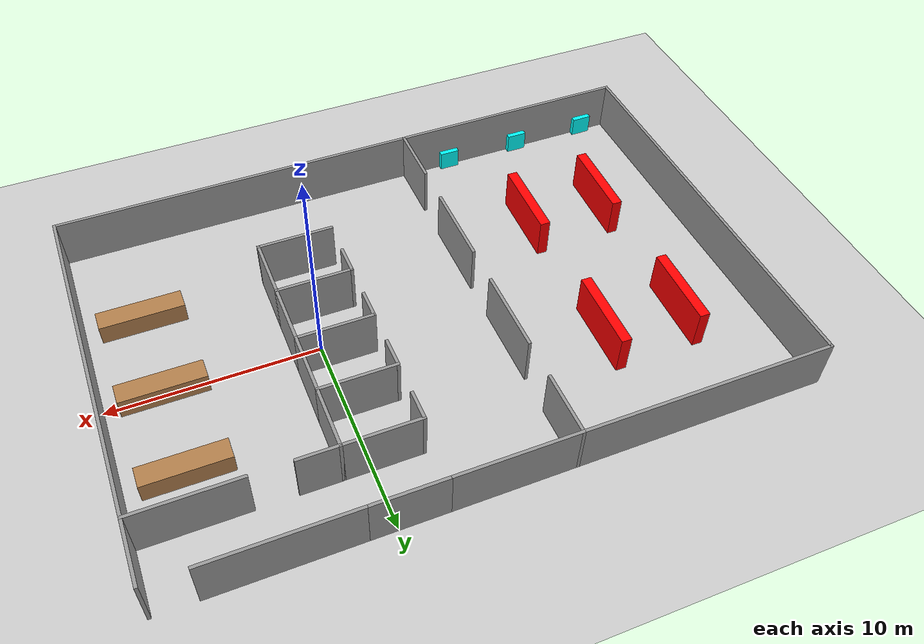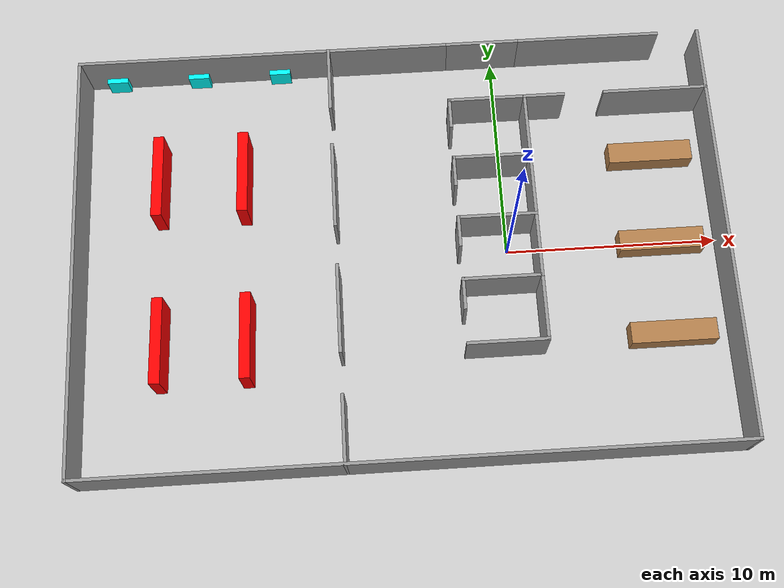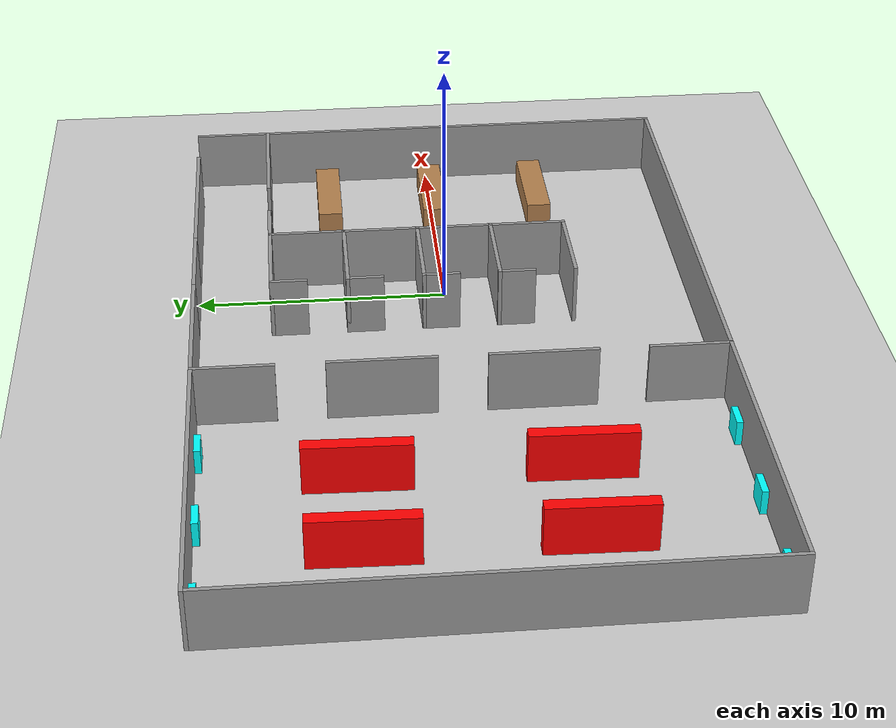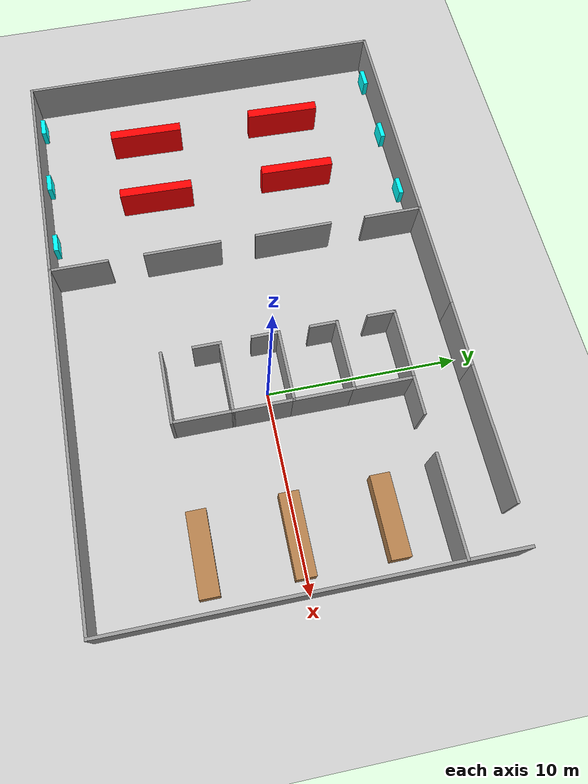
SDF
<sdf version="1.7">
 <world name="default">
  <light name="sun" type="directional">
   <pose>0 0 10 0 -0 0</pose>
   <diffuse>0.8 0.8 0.8 1</diffuse>
   <specular>0.2 0.2 0.2 1</specular>
   <attenuation>
    <range>1000</range>
    <constant>0.9</constant>
    <linear>0.01</linear>
    <quadratic>0.001</quadratic>
   </attenuation>
   <direction>-0.5 0.1 -0.9</direction>
   <spot><inner_angle>0</inner_angle><outer_angle>0</outer_angle><falloff>0</falloff></spot>
  </light>
  <model name="ground_plane">
   <static>1</static>
   <link name="link">
    <collision name="collision">
     <geometry><plane><normal>0 0 1</normal><size>100 100</size></plane></geometry>
     <surface>
      <contact><collide_bitmask>65535</collide_bitmask></contact>
      <friction><ode><mu>100</mu><mu2>50</mu2></ode></friction>
     </surface>
    </collision>
    <visual name="visual">
     <cast_shadows>0</cast_shadows>
     <geometry><plane><normal>0 0 1</normal><size>100 100</size></plane></geometry>
     <material>
      <script><uri>file://media/materials/scripts/gazebo.material</uri><name>Gazebo/Grey</name></script>
     </material>
    </visual>
   </link>
  </model>
  <gravity>0 0 -9.8</gravity>
  <magnetic_field>6e-06 2.3e-05 -4.2e-05</magnetic_field>
  <atmosphere type="adiabatic"/>
  <physics type="ode">
   <max_step_size>0.001</max_step_size>
   <real_time_factor>1</real_time_factor>
   <real_time_update_rate>1000</real_time_update_rate>
  </physics>
  <scene><ambient>0.4 0.4 0.4 1</ambient><background>0.7 0.7 0.7 1</background><shadows>1</shadows></scene>
  <spherical_coordinates>
   <surface_model>EARTH_WGS84</surface_model>
   <latitude_deg>0</latitude_deg>
   <longitude_deg>0</longitude_deg>
   <elevation>0</elevation>
   <heading_deg>0</heading_deg>
  </spherical_coordinates>
  <model name="warehouse">
   <pose>-5 -0 0 0 -0 0</pose>
   <link name="Wall_0">
    <collision name="Wall_0_Collision">
     <geometry><box><size>20.15 0.15 2.5</size></box></geometry>
     <pose>0 0 1.25 0 -0 0</pose>
    </collision>
    <visual name="Wall_0_Visual">
     <pose>0 0 1.25 0 -0 0</pose>
     <geometry><box><size>20.15 0.15 2.5</size></box></geometry>
     <material>
      <script><uri>file://media/materials/scripts/gazebo.material</uri><name>Gazebo/Grey</name></script>
      <ambient>1 1 1 1</ambient>
     </material>
     <meta><layer>0</layer></meta>
    </visual>
    <pose>15 0 0 0 -0 1.5708</pose>
   </link>
   <link name="Wall_11">
    <collision name="Wall_11_Collision">
     <geometry><box><size>1.5 0.15 2.5</size></box></geometry>
     <pose>0 0 1.25 0 -0 0</pose>
    </collision>
    <visual name="Wall_11_Visual">
     <pose>0 0 1.25 0 -0 0</pose>
     <geometry><box><size>1.5 0.15 2.5</size></box></geometry>
     <material>
      <script><uri>file://media/materials/scripts/gazebo.material</uri><name>Gazebo/Grey</name></script>
      <ambient>1 1 1 1</ambient>
     </material>
     <meta><layer>0</layer></meta>
    </visual>
    <pose>2.681 0.323659 0 0 -0 -1.5708</pose>
   </link>
   <link name="Wall_13">
    <collision name="Wall_13_Collision">
     <geometry><box><size>3.75 0.15 2.5</size></box></geometry>
     <pose>0 0 1.25 0 -0 0</pose>
    </collision>
    <visual name="Wall_13_Visual">
     <pose>0 0 1.25 0 -0 0</pose>
     <geometry><box><size>3.75 0.15 2.5</size></box></geometry>
     <material>
      <script><uri>file://media/materials/scripts/gazebo.material</uri><name>Gazebo/Grey</name></script>
      <ambient>1 1 1 1</ambient>
     </material>
     <meta><layer>0</layer></meta>
    </visual>
    <pose>4.481 -2 0 0 -0 0</pose>
   </link>
   <link name="Wall_15">
    <collision name="Wall_15_Collision">
     <geometry><box><size>3.15 0.15 2.5</size></box></geometry>
     <pose>0 0 1.25 0 -0 0</pose>
    </collision>
    <visual name="Wall_15_Visual">
     <pose>0 0 1.25 0 -0 0</pose>
     <geometry><box><size>3.15 0.15 2.5</size></box></geometry>
     <material>
      <script><uri>file://media/materials/scripts/gazebo.material</uri><name>Gazebo/Grey</name></script>
      <ambient>1 1 1 1</ambient>
     </material>
     <meta><layer>0</layer></meta>
    </visual>
    <pose>6.281 -0.5 0 0 -0 1.5708</pose>
   </link>
   <link name="Wall_16">
    <collision name="Wall_16_Collision">
     <geometry><box><size>3.75 0.15 2.5</size></box></geometry>
     <pose>0 0 1.25 0 -0 0</pose>
    </collision>
    <visual name="Wall_16_Visual">
     <pose>0 0 1.25 0 -0 0</pose>
     <geometry><box><size>3.75 0.15 2.5</size></box></geometry>
     <material>
      <script><uri>file://media/materials/scripts/gazebo.material</uri><name>Gazebo/Grey</name></script>
      <ambient>1 1 1 1</ambient>
     </material>
     <meta><layer>0</layer></meta>
    </visual>
    <pose>4.481 1 0 0 -0 3.14159</pose>
   </link>
   <link name="Wall_19">
    <collision name="Wall_19_Collision">
     <geometry><box><size>3.15 0.15 2.5</size></box></geometry>
     <pose>0 0 1.25 0 -0 0</pose>
    </collision>
    <visual name="Wall_19_Visual">
     <pose>0 0 1.25 0 -0 0</pose>
     <geometry><box><size>3.15 0.15 2.5</size></box></geometry>
     <material>
      <script><uri>file://media/materials/scripts/gazebo.material</uri><name>Gazebo/Grey</name></script>
      <ambient>1 1 1 1</ambient>
     </material>
     <meta><layer>0</layer></meta>
    </visual>
    <pose>6.281 2.5 0 0 -0 1.5708</pose>
   </link>
   <link name="Wall_2">
    <collision name="Wall_2_Collision">
     <geometry><box><size>17.831 0.15 2.5</size></box></geometry>
     <pose>0 0 1.25 0 -0 0</pose>
    </collision>
    <visual name="Wall_2_Visual">
     <pose>0 0 1.25 0 -0 0</pose>
     <geometry><box><size>17.831 0.15 2.5</size></box></geometry>
     <material>
      <script><uri>file://media/materials/scripts/gazebo.material</uri><name>Gazebo/Grey</name></script>
      <ambient>1 1 1 1</ambient>
     </material>
     <meta><layer>0</layer></meta>
    </visual>
    <pose>-6.1595 10 0 0 -0 3.14159</pose>
   </link>
   <link name="Wall_20">
    <collision name="Wall_20_Collision">
     <geometry><box><size>3.75 0.15 2.5</size></box></geometry>
     <pose>0 0 1.25 0 -0 0</pose>
    </collision>
    <visual name="Wall_20_Visual">
     <pose>0 0 1.25 0 -0 0</pose>
     <geometry><box><size>3.75 0.15 2.5</size></box></geometry>
     <material>
      <script><uri>file://media/materials/scripts/gazebo.material</uri><name>Gazebo/Grey</name></script>
      <ambient>1 1 1 1</ambient>
     </material>
     <meta><layer>0</layer></meta>
    </visual>
    <pose>4.481 4 0 0 -0 3.14159</pose>
   </link>
   <link name="Wall_21">
    <collision name="Wall_21_Collision">
     <geometry><box><size>1.5 0.15 2.5</size></box></geometry>
     <pose>0 0 1.25 0 -0 0</pose>
    </collision>
    <visual name="Wall_21_Visual">
     <pose>0 0 1.25 0 -0 0</pose>
     <geometry><box><size>1.5 0.15 2.5</size></box></geometry>
     <material>
      <script><uri>file://media/materials/scripts/gazebo.material</uri><name>Gazebo/Grey</name></script>
      <ambient>1 1 1 1</ambient>
     </material>
     <meta><layer>0</layer></meta>
    </visual>
    <pose>2.681 3.32684 0 0 -0 -1.5708</pose>
   </link>
   <link name="Wall_23">
    <collision name="Wall_23_Collision">
     <geometry><box><size>3.15 0.15 2.5</size></box></geometry>
     <pose>0 0 1.25 0 -0 0</pose>
    </collision>
    <visual name="Wall_23_Visual">
     <pose>0 0 1.25 0 -0 0</pose>
     <geometry><box><size>3.15 0.15 2.5</size></box></geometry>
     <material>
      <script><uri>file://media/materials/scripts/gazebo.material</uri><name>Gazebo/Grey</name></script>
      <ambient>1 1 1 1</ambient>
     </material>
     <meta><layer>0</layer></meta>
    </visual>
    <pose>6.281 5.5 0 0 -0 1.5708</pose>
   </link>
   <link name="Wall_24">
    <collision name="Wall_24_Collision">
     <geometry><box><size>3.75 0.15 2.5</size></box></geometry>
     <pose>0 0 1.25 0 -0 0</pose>
    </collision>
    <visual name="Wall_24_Visual">
     <pose>0 0 1.25 0 -0 0</pose>
     <geometry><box><size>3.75 0.15 2.5</size></box></geometry>
     <material>
      <script><uri>file://media/materials/scripts/gazebo.material</uri><name>Gazebo/Grey</name></script>
      <ambient>1 1 1 1</ambient>
     </material>
     <meta><layer>0</layer></meta>
    </visual>
    <pose>4.481 7 0 0 -0 3.14159</pose>
   </link>
   <link name="Wall_25">
    <collision name="Wall_25_Collision">
     <geometry><box><size>1.5 0.15 2.5</size></box></geometry>
     <pose>0 0 1.25 0 -0 0</pose>
    </collision>
    <visual name="Wall_25_Visual">
     <pose>0 0 1.25 0 -0 0</pose>
     <geometry><box><size>1.5 0.15 2.5</size></box></geometry>
     <material>
      <script><uri>file://media/materials/scripts/gazebo.material</uri><name>Gazebo/Grey</name></script>
      <ambient>1 1 1 1</ambient>
     </material>
     <meta><layer>0</layer></meta>
    </visual>
    <pose>2.681 6.32684 0 0 -0 -1.5708</pose>
   </link>
   <link name="Wall_27">
    <collision name="Wall_27_Collision">
     <geometry><box><size>2 0.15 2.5</size></box></geometry>
     <pose>0 0 1.25 0 -0 0</pose>
    </collision>
    <visual name="Wall_27_Visual">
     <pose>0 0 1.25 0 -0 0</pose>
     <geometry><box><size>2 0.15 2.5</size></box></geometry>
     <material>
      <script><uri>file://media/materials/scripts/gazebo.material</uri><name>Gazebo/Grey</name></script>
      <ambient>1 1 1 1</ambient>
     </material>
     <meta><layer>0</layer></meta>
    </visual>
    <pose>7.206 7 0 0 -0 0</pose>
   </link>
   <link name="Wall_29">
    <collision name="Wall_29_Collision">
     <geometry><box><size>5 0.15 2.5</size></box></geometry>
     <pose>0 0 1.25 0 -0 0</pose>
    </collision>
    <visual name="Wall_29_Visual">
     <pose>0 0 1.25 0 -0 0</pose>
     <geometry><box><size>5 0.15 2.5</size></box></geometry>
     <material>
      <script><uri>file://media/materials/scripts/gazebo.material</uri><name>Gazebo/Grey</name></script>
      <ambient>1 1 1 1</ambient>
     </material>
     <meta><layer>0</layer></meta>
    </visual>
    <pose>12.565 7 0 0 -0 0</pose>
   </link>
   <link name="Wall_3">
    <collision name="Wall_3_Collision">
     <geometry><box><size>20.15 0.15 2.5</size></box></geometry>
     <pose>0 0 1.25 0 -0 0</pose>
    </collision>
    <visual name="Wall_3_Visual">
     <pose>0 0 1.25 0 -0 0</pose>
     <geometry><box><size>20.15 0.15 2.5</size></box></geometry>
     <material>
      <script><uri>file://media/materials/scripts/gazebo.material</uri><name>Gazebo/Grey</name></script>
      <ambient>1 1 1 1</ambient>
     </material>
     <meta><layer>0</layer></meta>
    </visual>
    <pose>-15 0 0 0 -0 -1.5708</pose>
   </link>
   <link name="Wall_31">
    <collision name="Wall_31_Collision">
     <geometry><box><size>3.15 0.15 2.5</size></box></geometry>
     <pose>0 0 1.25 0 -0 0</pose>
    </collision>
    <visual name="Wall_31_Visual">
     <pose>0 0 1.25 0 -0 0</pose>
     <geometry><box><size>3.15 0.15 2.5</size></box></geometry>
     <material>
      <script><uri>file://media/materials/scripts/gazebo.material</uri><name>Gazebo/Grey</name></script>
      <ambient>1 1 1 1</ambient>
     </material>
     <meta><layer>0</layer></meta>
    </visual>
    <pose>6.281 -3.5 0 0 -0 -1.5708</pose>
   </link>
   <link name="Wall_32">
    <collision name="Wall_32_Collision">
     <geometry><box><size>3.75 0.15 2.5</size></box></geometry>
     <pose>0 0 1.25 0 -0 0</pose>
    </collision>
    <visual name="Wall_32_Visual">
     <pose>0 0 1.25 0 -0 0</pose>
     <geometry><box><size>3.75 0.15 2.5</size></box></geometry>
     <material>
      <script><uri>file://media/materials/scripts/gazebo.material</uri><name>Gazebo/Grey</name></script>
      <ambient>1 1 1 1</ambient>
     </material>
     <meta><layer>0</layer></meta>
    </visual>
    <pose>4.481 -5 0 0 -0 3.14159</pose>
   </link>
   <link name="Wall_34">
    <collision name="Wall_34_Collision">
     <geometry><box><size>1.5 0.15 2.5</size></box></geometry>
     <pose>0 0 1.25 0 -0 0</pose>
    </collision>
    <visual name="Wall_34_Visual">
     <pose>0 0 1.25 0 -0 0</pose>
     <geometry><box><size>1.5 0.15 2.5</size></box></geometry>
     <material>
      <script><uri>file://media/materials/scripts/gazebo.material</uri><name>Gazebo/Grey</name></script>
      <ambient>1 1 1 1</ambient>
     </material>
     <meta><layer>0</layer></meta>
    </visual>
    <pose>2.681 -2.67316 0 0 0 -1.5708</pose>
   </link>
   <link name="Wall_36">
    <collision name="Wall_36_Collision">
     <geometry><box><size>4.15 0.15 2.5</size></box></geometry>
     <pose>0 0 1.25 0 -0 0</pose>
    </collision>
    <visual name="Wall_36_Visual">
     <pose>0 0 1.25 0 -0 0</pose>
     <geometry><box><size>4.15 0.15 2.5</size></box></geometry>
     <material>
      <script><uri>file://media/materials/scripts/gazebo.material</uri><name>Gazebo/Grey</name></script>
      <ambient>1 1 1 1</ambient>
     </material>
     <meta><layer>0</layer></meta>
    </visual>
    <pose>-3 3 0 0 -0 1.5708</pose>
   </link>
   <link name="Wall_39">
    <collision name="Wall_39_Collision">
     <geometry><box><size>6.869 0.15 2.5</size></box></geometry>
     <pose>0 0 1.25 0 -0 0</pose>
    </collision>
    <visual name="Wall_39_Visual">
     <pose>0 0 1.25 0 -0 0</pose>
     <geometry><box><size>6.869 0.15 2.5</size></box></geometry>
     <material>
      <script><uri>file://media/materials/scripts/gazebo.material</uri><name>Gazebo/Grey</name></script>
      <ambient>1 1 1 1</ambient>
     </material>
     <meta><layer>0</layer></meta>
    </visual>
    <pose>9.6405 10 0 0 -0 0</pose>
   </link>
   <link name="Wall_4">
    <collision name="Wall_4_Collision">
     <geometry><box><size>30.15 0.15 2.5</size></box></geometry>
     <pose>0 0 1.25 0 -0 0</pose>
    </collision>
    <visual name="Wall_4_Visual">
     <pose>0 0 1.25 0 -0 0</pose>
     <geometry><box><size>30.15 0.15 2.5</size></box></geometry>
     <material>
      <script><uri>file://media/materials/scripts/gazebo.material</uri><name>Gazebo/Grey</name></script>
      <ambient>1 1 1 1</ambient>
     </material>
     <meta><layer>0</layer></meta>
    </visual>
    <pose>0 -10 0 0 -0 0</pose>
   </link>
   <link name="Wall_41">
    <collision name="Wall_41_Collision">
     <geometry><box><size>4.15 0.15 2.5</size></box></geometry>
     <pose>0 0 1.25 0 -0 0</pose>
    </collision>
    <visual name="Wall_41_Visual">
     <pose>0 0 1.25 0 -0 0</pose>
     <geometry><box><size>4.15 0.15 2.5</size></box></geometry>
     <material>
      <script><uri>file://media/materials/scripts/gazebo.material</uri><name>Gazebo/Grey</name></script>
      <ambient>1 1 1 1</ambient>
     </material>
     <meta><layer>0</layer></meta>
    </visual>
    <pose>-3 -3 0 0 -0 1.5708</pose>
   </link>
   <link name="Wall_43">
    <collision name="Wall_43_Collision">
     <geometry><box><size>3.15 0.15 2.5</size></box></geometry>
     <pose>0 0 1.25 0 -0 0</pose>
    </collision>
    <visual name="Wall_43_Visual">
     <pose>0 0 1.25 0 -0 0</pose>
     <geometry><box><size>3.15 0.15 2.5</size></box></geometry>
     <material>
      <script><uri>file://media/materials/scripts/gazebo.material</uri><name>Gazebo/Grey</name></script>
      <ambient>1 1 1 1</ambient>
     </material>
     <meta><layer>0</layer></meta>
    </visual>
    <pose>-3 -8.5 0 0 -0 -1.5708</pose>
   </link>
   <link name="Wall_45">
    <collision name="Wall_45_Collision">
     <geometry><box><size>3.15 0.15 2.5</size></box></geometry>
     <pose>0 0 1.25 0 -0 0</pose>
    </collision>
    <visual name="Wall_45_Visual">
     <pose>0 0 1.25 0 -0 0</pose>
     <geometry><box><size>3.15 0.15 2.5</size></box></geometry>
     <material>
      <script><uri>file://media/materials/scripts/gazebo.material</uri><name>Gazebo/Grey</name></script>
      <ambient>1 1 1 1</ambient>
     </material>
     <meta><layer>0</layer></meta>
    </visual>
    <pose>-3 8.5 0 0 -0 -1.5708</pose>
   </link>
   <static>1</static>
  </model>
  <model name="table_0">
   <pose>5 0 0 0 -0 0</pose>
   <link name="Wall_49">
    <collision name="Wall_49_Collision">
     <geometry><box><size>4 1 1</size></box></geometry>
     <pose>0 0 0.5 0 -0 0</pose>
    </collision>
    <visual name="Wall_49_Visual">
     <pose>0 0 0.5 0 -0 0</pose>
     <geometry><box><size>4 1 1</size></box></geometry>
     <material>
      <script><uri>file://media/materials/scripts/gazebo.material</uri><name>Gazebo/Wood</name></script>
      <ambient>1 1 1 1</ambient>
     </material>
     <meta><layer>0</layer></meta>
    </visual>
    <pose>2.25 -0.0775 0 0 -0 0</pose>
   </link>
   <static>1</static>
  </model>
  <model name="table_0_clone">
   <pose>5 4.5 0 0 -0 0</pose>
   <link name="Wall_49">
    <collision name="Wall_49_Collision">
     <geometry><box><size>4 1 1</size></box></geometry>
     <pose>0 0 0.5 0 -0 0</pose>
    </collision>
    <visual name="Wall_49_Visual">
     <pose>0 0 0.5 0 -0 0</pose>
     <geometry><box><size>4 1 1</size></box></geometry>
     <material>
      <script><uri>file://media/materials/scripts/gazebo.material</uri><name>Gazebo/Wood</name></script>
      <ambient>1 1 1 1</ambient>
     </material>
     <meta><layer>0</layer></meta>
    </visual>
    <pose>2.25 -0.0775 0 0 -0 0</pose>
   </link>
   <static>1</static>
  </model>
  <model name="table_0_clone_0">
   <pose>5 -4.5 0 0 -0 0</pose>
   <link name="Wall_49">
    <collision name="Wall_49_Collision">
     <geometry><box><size>4 1 1</size></box></geometry>
     <pose>0 0 0.5 0 -0 0</pose>
    </collision>
    <visual name="Wall_49_Visual">
     <pose>0 0 0.5 0 -0 0</pose>
     <geometry><box><size>4 1 1</size></box></geometry>
     <material>
      <script><uri>file://media/materials/scripts/gazebo.material</uri><name>Gazebo/Wood</name></script>
      <ambient>1 1 1 1</ambient>
     </material>
     <meta><layer>0</layer></meta>
    </visual>
    <pose>2.25 -0.0775 0 0 -0 0</pose>
   </link>
   <static>1</static>
  </model>
  <plugin name="ActorPosesPlugin" filename="libActorPosesPlugin.so"/>
  <model name="wall_delivery_point">
   <pose>-0.525 5.0375 0 0 -0 0</pose>
   <link name="Wall_0">
    <collision name="Wall_0_Collision">
     <geometry><box><size>3.5 0.15 2.5</size></box></geometry>
     <pose>0 0 1.25 0 -0 0</pose>
    </collision>
    <visual name="Wall_0_Visual">
     <pose>0 0 1.25 0 -0 0</pose>
     <geometry><box><size>3.5 0.15 2.5</size></box></geometry>
     <material>
      <script><uri>file://media/materials/scripts/gazebo.material</uri><name>Gazebo/Grey</name></script>
      <ambient>1 1 1 1</ambient>
     </material>
     <meta><layer>0</layer></meta>
    </visual>
    <pose>0 4.9625 0 0 -0 0</pose>
   </link>
   <static>1</static>
  </model>
  <model name="box_resized">
   <link name="link">
    <inertial>
     <mass>1</mass>
     <inertia>
      <ixx>0.166667</ixx>
      <ixy>0</ixy>
      <ixz>0</ixz>
      <iyy>0.166667</iyy>
      <iyz>0</iyz>
      <izz>0.166667</izz>
     </inertia>
    </inertial>
    <pose>-0.778204 -0.876729 -9e-06 0 -0 0</pose>
    <visual name="visual">
     <geometry><box><size>0.5 4 2</size></box></geometry>
     <material>
      <script><name>Gazebo/Grey</name><uri>file://media/materials/scripts/gazebo.material</uri></script>
      <shader type="pixel"><normal_map>__default__</normal_map></shader>
      <ambient>1 0 0 1</ambient>
      <diffuse>1 0 0 1</diffuse>
      <specular>0.01 0.01 0.01 1</specular>
      <emissive>0 0 0 1</emissive>
     </material>
    </visual>
    <collision name="collision">
     <geometry><box><size>0.5 4 2</size></box></geometry>
     <surface>
      <friction>
       <ode><mu>1</mu><mu2>1</mu2><fdir1>0 0 0</fdir1><slip1>0</slip1><slip2>0</slip2></ode>
       <torsional>
        <coefficient>1</coefficient>
        <patch_radius>0</patch_radius>
        <surface_radius>0</surface_radius>
        <use_patch_radius>1</use_patch_radius>
        <ode><slip>0</slip></ode>
       </torsional>
      </friction>
      <bounce><restitution_coefficient>0</restitution_coefficient><threshold>1e+06</threshold></bounce>
      <contact>
       <collide_without_contact>0</collide_without_contact>
       <collide_without_contact_bitmask>1</collide_without_contact_bitmask>
       <collide_bitmask>1</collide_bitmask>
       <ode>
        <soft_cfm>0</soft_cfm>
        <soft_erp>0.2</soft_erp>
        <kp>1e+13</kp>
        <kd>1</kd>
        <max_vel>0.01</max_vel>
        <min_depth>0</min_depth>
       </ode>
       <bullet>
        <split_impulse>1</split_impulse>
        <split_impulse_penetration_threshold>-0.01</split_impulse_penetration_threshold>
        <soft_cfm>0</soft_cfm>
        <soft_erp>0.2</soft_erp>
        <kp>1e+13</kp>
        <kd>1</kd>
       </bullet>
      </contact>
     </surface>
    </collision>
   </link>
   <static>0</static>
   <pose>-15.4949 5.00509 0.999828 0.00016 5e-06 -0.025143</pose>
  </model>
  <model name="box_resized_clone">
   <link name="link">
    <inertial>
     <mass>1</mass>
     <inertia>
      <ixx>0.166667</ixx>
      <ixy>0</ixy>
      <ixz>0</ixz>
      <iyy>0.166667</iyy>
      <iyz>0</iyz>
      <izz>0.166667</izz>
     </inertia>
    </inertial>
    <pose>-0.778204 -0.876729 -9e-06 0 -0 0</pose>
    <visual name="visual">
     <geometry><box><size>0.5 4 2</size></box></geometry>
     <material>
      <script><name>Gazebo/Grey</name><uri>file://media/materials/scripts/gazebo.material</uri></script>
      <shader type="pixel"><normal_map>__default__</normal_map></shader>
      <ambient>1 0 0 1</ambient>
      <diffuse>1 0 0 1</diffuse>
      <specular>0.01 0.01 0.01 1</specular>
      <emissive>0 0 0 1</emissive>
     </material>
    </visual>
    <collision name="collision">
     <geometry><box><size>0.5 4 2</size></box></geometry>
     <surface>
      <friction>
       <ode><mu>1</mu><mu2>1</mu2><fdir1>0 0 0</fdir1><slip1>0</slip1><slip2>0</slip2></ode>
       <torsional>
        <coefficient>1</coefficient>
        <patch_radius>0</patch_radius>
        <surface_radius>0</surface_radius>
        <use_patch_radius>1</use_patch_radius>
        <ode><slip>0</slip></ode>
       </torsional>
      </friction>
      <bounce><restitution_coefficient>0</restitution_coefficient><threshold>1e+06</threshold></bounce>
      <contact>
       <collide_without_contact>0</collide_without_contact>
       <collide_without_contact_bitmask>1</collide_without_contact_bitmask>
       <collide_bitmask>1</collide_bitmask>
       <ode>
        <soft_cfm>0</soft_cfm>
        <soft_erp>0.2</soft_erp>
        <kp>1e+13</kp>
        <kd>1</kd>
        <max_vel>0.01</max_vel>
        <min_depth>0</min_depth>
       </ode>
       <bullet>
        <split_impulse>1</split_impulse>
        <split_impulse_penetration_threshold>-0.01</split_impulse_penetration_threshold>
        <soft_cfm>0</soft_cfm>
        <soft_erp>0.2</soft_erp>
        <kp>1e+13</kp>
        <kd>1</kd>
       </bullet>
      </contact>
     </surface>
    </collision>
   </link>
   <static>0</static>
   <pose>-11.4968 5.00681 0.999828 0.00016 5e-06 -0.025143</pose>
  </model>
  <model name="box_resized_clone_0">
   <link name="link">
    <inertial>
     <mass>1</mass>
     <inertia>
      <ixx>0.166667</ixx>
      <ixy>0</ixy>
      <ixz>0</ixz>
      <iyy>0.166667</iyy>
      <iyz>0</iyz>
      <izz>0.166667</izz>
     </inertia>
    </inertial>
    <pose>-0.778204 -0.876729 -9e-06 0 -0 0</pose>
    <visual name="visual">
     <geometry><box><size>0.5 4 2</size></box></geometry>
     <material>
      <script><name>Gazebo/Grey</name><uri>file://media/materials/scripts/gazebo.material</uri></script>
      <shader type="pixel"><normal_map>__default__</normal_map></shader>
      <ambient>1 0 0 1</ambient>
      <diffuse>1 0 0 1</diffuse>
      <specular>0.01 0.01 0.01 1</specular>
      <emissive>0 0 0 1</emissive>
     </material>
    </visual>
    <collision name="collision">
     <geometry><box><size>0.5 4 2</size></box></geometry>
     <surface>
      <friction>
       <ode><mu>1</mu><mu2>1</mu2><fdir1>0 0 0</fdir1><slip1>0</slip1><slip2>0</slip2></ode>
       <torsional>
        <coefficient>1</coefficient>
        <patch_radius>0</patch_radius>
        <surface_radius>0</surface_radius>
        <use_patch_radius>1</use_patch_radius>
        <ode><slip>0</slip></ode>
       </torsional>
      </friction>
      <bounce><restitution_coefficient>0</restitution_coefficient><threshold>1e+06</threshold></bounce>
      <contact>
       <collide_without_contact>0</collide_without_contact>
       <collide_without_contact_bitmask>1</collide_without_contact_bitmask>
       <collide_bitmask>1</collide_bitmask>
       <ode>
        <soft_cfm>0</soft_cfm>
        <soft_erp>0.2</soft_erp>
        <kp>1e+13</kp>
        <kd>1</kd>
        <max_vel>0.01</max_vel>
        <min_depth>0</min_depth>
       </ode>
       <bullet>
        <split_impulse>1</split_impulse>
        <split_impulse_penetration_threshold>-0.01</split_impulse_penetration_threshold>
        <soft_cfm>0</soft_cfm>
        <soft_erp>0.2</soft_erp>
        <kp>1e+13</kp>
        <kd>1</kd>
       </bullet>
      </contact>
     </surface>
    </collision>
   </link>
   <static>0</static>
   <pose>-15.4882 -3.02054 0.999555 -0.00016 -5e-06 -0.024591</pose>
  </model>
  <model name="box_resized_clone_1">
   <link name="link">
    <inertial>
     <mass>1</mass>
     <inertia>
      <ixx>0.166667</ixx>
      <ixy>0</ixy>
      <ixz>0</ixz>
      <iyy>0.166667</iyy>
      <iyz>0</iyz>
      <izz>0.166667</izz>
     </inertia>
    </inertial>
    <pose>-0.778204 -0.876729 -9e-06 0 -0 0</pose>
    <visual name="visual">
     <geometry><box><size>0.5 4 2</size></box></geometry>
     <material>
      <script><name>Gazebo/Grey</name><uri>file://media/materials/scripts/gazebo.material</uri></script>
      <shader type="pixel"><normal_map>__default__</normal_map></shader>
      <ambient>1 0 0 1</ambient>
      <diffuse>1 0 0 1</diffuse>
      <specular>0.01 0.01 0.01 1</specular>
      <emissive>0 0 0 1</emissive>
     </material>
    </visual>
    <collision name="collision">
     <geometry><box><size>0.5 4 2</size></box></geometry>
     <surface>
      <friction>
       <ode><mu>1</mu><mu2>1</mu2><fdir1>0 0 0</fdir1><slip1>0</slip1><slip2>0</slip2></ode>
       <torsional>
        <coefficient>1</coefficient>
        <patch_radius>0</patch_radius>
        <surface_radius>0</surface_radius>
        <use_patch_radius>1</use_patch_radius>
        <ode><slip>0</slip></ode>
       </torsional>
      </friction>
      <bounce><restitution_coefficient>0</restitution_coefficient><threshold>1e+06</threshold></bounce>
      <contact>
       <collide_without_contact>0</collide_without_contact>
       <collide_without_contact_bitmask>1</collide_without_contact_bitmask>
       <collide_bitmask>1</collide_bitmask>
       <ode>
        <soft_cfm>0</soft_cfm>
        <soft_erp>0.2</soft_erp>
        <kp>1e+13</kp>
        <kd>1</kd>
        <max_vel>0.01</max_vel>
        <min_depth>0</min_depth>
       </ode>
       <bullet>
        <split_impulse>1</split_impulse>
        <split_impulse_penetration_threshold>-0.01</split_impulse_penetration_threshold>
        <soft_cfm>0</soft_cfm>
        <soft_erp>0.2</soft_erp>
        <kp>1e+13</kp>
        <kd>1</kd>
       </bullet>
      </contact>
     </surface>
    </collision>
   </link>
   <static>0</static>
   <pose>-11.4906 -2.99884 0.999828 0.00016 5e-06 -0.02397</pose>
  </model>
  <model name="delivery_point">
   <link name="link">
    <inertial>
     <mass>1</mass>
     <inertia>
      <ixx>0.166667</ixx>
      <ixy>0</ixy>
      <ixz>0</ixz>
      <iyy>0.166667</iyy>
      <iyz>0</iyz>
      <izz>0.166667</izz>
     </inertia>
    </inertial>
    <visual name="visual">
     <geometry><box><size>1 0.25 1</size></box></geometry>
     <material>
      <script><name>Gazebo/Grey</name><uri>file://media/materials/scripts/gazebo.material</uri></script>
      <shader type="pixel"><normal_map>__default__</normal_map></shader>
      <ambient>0 1 1 1</ambient>
      <diffuse>0 1 1 1</diffuse>
      <specular>0 1 1 1</specular>
      <emissive>0 0 0 1</emissive>
     </material>
    </visual>
    <collision name="collision">
     <geometry><box><size>1 0.25 1</size></box></geometry>
     <surface>
      <friction>
       <ode><mu>1</mu><mu2>1</mu2><fdir1>0 0 0</fdir1><slip1>0</slip1><slip2>0</slip2></ode>
       <torsional>
        <coefficient>1</coefficient>
        <patch_radius>0</patch_radius>
        <surface_radius>0</surface_radius>
        <use_patch_radius>1</use_patch_radius>
        <ode><slip>0</slip></ode>
       </torsional>
      </friction>
      <bounce><restitution_coefficient>0</restitution_coefficient><threshold>1e+06</threshold></bounce>
      <contact>
       <collide_without_contact>0</collide_without_contact>
       <collide_without_contact_bitmask>1</collide_without_contact_bitmask>
       <collide_bitmask>1</collide_bitmask>
       <ode>
        <soft_cfm>0</soft_cfm>
        <soft_erp>0.2</soft_erp>
        <kp>1e+13</kp>
        <kd>1</kd>
        <max_vel>0.01</max_vel>
        <min_depth>0</min_depth>
       </ode>
       <bullet>
        <split_impulse>1</split_impulse>
        <split_impulse_penetration_threshold>-0.01</split_impulse_penetration_threshold>
        <soft_cfm>0</soft_cfm>
        <soft_erp>0.2</soft_erp>
        <kp>1e+13</kp>
        <kd>1</kd>
       </bullet>
      </contact>
     </surface>
    </collision>
   </link>
   <static>0</static>
   <pose>-18.5 -9.8 0.499995 0 1e-05 0</pose>
  </model>
  <model name="delivery_point_clone">
   <link name="link">
    <inertial>
     <mass>1</mass>
     <inertia>
      <ixx>0.166667</ixx>
      <ixy>0</ixy>
      <ixz>0</ixz>
      <iyy>0.166667</iyy>
      <iyz>0</iyz>
      <izz>0.166667</izz>
     </inertia>
    </inertial>
    <visual name="visual">
     <geometry><box><size>1 0.25 1</size></box></geometry>
     <material>
      <script><name>Gazebo/Grey</name><uri>file://media/materials/scripts/gazebo.material</uri></script>
      <shader type="pixel"><normal_map>__default__</normal_map></shader>
      <ambient>0 1 1 1</ambient>
      <diffuse>0 1 1 1</diffuse>
      <specular>0 1 1 1</specular>
      <emissive>0 0 0 1</emissive>
     </material>
    </visual>
    <collision name="collision">
     <geometry><box><size>1 0.25 1</size></box></geometry>
     <surface>
      <friction>
       <ode><mu>1</mu><mu2>1</mu2><fdir1>0 0 0</fdir1><slip1>0</slip1><slip2>0</slip2></ode>
       <torsional>
        <coefficient>1</coefficient>
        <patch_radius>0</patch_radius>
        <surface_radius>0</surface_radius>
        <use_patch_radius>1</use_patch_radius>
        <ode><slip>0</slip></ode>
       </torsional>
      </friction>
      <bounce><restitution_coefficient>0</restitution_coefficient><threshold>1e+06</threshold></bounce>
      <contact>
       <collide_without_contact>0</collide_without_contact>
       <collide_without_contact_bitmask>1</collide_without_contact_bitmask>
       <collide_bitmask>1</collide_bitmask>
       <ode>
        <soft_cfm>0</soft_cfm>
        <soft_erp>0.2</soft_erp>
        <kp>1e+13</kp>
        <kd>1</kd>
        <max_vel>0.01</max_vel>
        <min_depth>0</min_depth>
       </ode>
       <bullet>
        <split_impulse>1</split_impulse>
        <split_impulse_penetration_threshold>-0.01</split_impulse_penetration_threshold>
        <soft_cfm>0</soft_cfm>
        <soft_erp>0.2</soft_erp>
        <kp>1e+13</kp>
        <kd>1</kd>
       </bullet>
      </contact>
     </surface>
    </collision>
   </link>
   <static>0</static>
   <pose>-14.5 -9.8 0.499995 0 1e-05 0</pose>
  </model>
  <model name="delivery_point_clone_clone">
   <link name="link">
    <inertial>
     <mass>1</mass>
     <inertia>
      <ixx>0.166667</ixx>
      <ixy>0</ixy>
      <ixz>0</ixz>
      <iyy>0.166667</iyy>
      <iyz>0</iyz>
      <izz>0.166667</izz>
     </inertia>
    </inertial>
    <visual name="visual">
     <geometry><box><size>1 0.25 1</size></box></geometry>
     <material>
      <script><name>Gazebo/Grey</name><uri>file://media/materials/scripts/gazebo.material</uri></script>
      <shader type="pixel"><normal_map>__default__</normal_map></shader>
      <ambient>0 1 1 1</ambient>
      <diffuse>0 1 1 1</diffuse>
      <specular>0 1 1 1</specular>
      <emissive>0 0 0 1</emissive>
     </material>
    </visual>
    <collision name="collision">
     <geometry><box><size>1 0.25 1</size></box></geometry>
     <surface>
      <friction>
       <ode><mu>1</mu><mu2>1</mu2><fdir1>0 0 0</fdir1><slip1>0</slip1><slip2>0</slip2></ode>
       <torsional>
        <coefficient>1</coefficient>
        <patch_radius>0</patch_radius>
        <surface_radius>0</surface_radius>
        <use_patch_radius>1</use_patch_radius>
        <ode><slip>0</slip></ode>
       </torsional>
      </friction>
      <bounce><restitution_coefficient>0</restitution_coefficient><threshold>1e+06</threshold></bounce>
      <contact>
       <collide_without_contact>0</collide_without_contact>
       <collide_without_contact_bitmask>1</collide_without_contact_bitmask>
       <collide_bitmask>1</collide_bitmask>
       <ode>
        <soft_cfm>0</soft_cfm>
        <soft_erp>0.2</soft_erp>
        <kp>1e+13</kp>
        <kd>1</kd>
        <max_vel>0.01</max_vel>
        <min_depth>0</min_depth>
       </ode>
       <bullet>
        <split_impulse>1</split_impulse>
        <split_impulse_penetration_threshold>-0.01</split_impulse_penetration_threshold>
        <soft_cfm>0</soft_cfm>
        <soft_erp>0.2</soft_erp>
        <kp>1e+13</kp>
        <kd>1</kd>
       </bullet>
      </contact>
     </surface>
    </collision>
   </link>
   <static>0</static>
   <pose>-10.5 -9.8 0.499995 0 1e-05 0</pose>
  </model>
  <model name="delivery_point_clone_0">
   <link name="link">
    <inertial>
     <mass>1</mass>
     <inertia>
      <ixx>0.166667</ixx>
      <ixy>0</ixy>
      <ixz>0</ixz>
      <iyy>0.166667</iyy>
      <iyz>0</iyz>
      <izz>0.166667</izz>
     </inertia>
    </inertial>
    <visual name="visual">
     <geometry><box><size>1 0.25 1</size></box></geometry>
     <material>
      <script><name>Gazebo/Grey</name><uri>file://media/materials/scripts/gazebo.material</uri></script>
      <shader type="pixel"><normal_map>__default__</normal_map></shader>
      <ambient>0 1 1 1</ambient>
      <diffuse>0 1 1 1</diffuse>
      <specular>0 1 1 1</specular>
      <emissive>0 0 0 1</emissive>
     </material>
    </visual>
    <collision name="collision">
     <geometry><box><size>1 0.25 1</size></box></geometry>
     <surface>
      <friction>
       <ode><mu>1</mu><mu2>1</mu2><fdir1>0 0 0</fdir1><slip1>0</slip1><slip2>0</slip2></ode>
       <torsional>
        <coefficient>1</coefficient>
        <patch_radius>0</patch_radius>
        <surface_radius>0</surface_radius>
        <use_patch_radius>1</use_patch_radius>
        <ode><slip>0</slip></ode>
       </torsional>
      </friction>
      <bounce><restitution_coefficient>0</restitution_coefficient><threshold>1e+06</threshold></bounce>
      <contact>
       <collide_without_contact>0</collide_without_contact>
       <collide_without_contact_bitmask>1</collide_without_contact_bitmask>
       <collide_bitmask>1</collide_bitmask>
       <ode>
        <soft_cfm>0</soft_cfm>
        <soft_erp>0.2</soft_erp>
        <kp>1e+13</kp>
        <kd>1</kd>
        <max_vel>0.01</max_vel>
        <min_depth>0</min_depth>
       </ode>
       <bullet>
        <split_impulse>1</split_impulse>
        <split_impulse_penetration_threshold>-0.01</split_impulse_penetration_threshold>
        <soft_cfm>0</soft_cfm>
        <soft_erp>0.2</soft_erp>
        <kp>1e+13</kp>
        <kd>1</kd>
       </bullet>
      </contact>
     </surface>
    </collision>
   </link>
   <static>0</static>
   <pose>-18.5 9.8 0.499995 0 1e-05 0</pose>
  </model>
  <model name="delivery_point_clone_1">
   <link name="link">
    <inertial>
     <mass>1</mass>
     <inertia>
      <ixx>0.166667</ixx>
      <ixy>0</ixy>
      <ixz>0</ixz>
      <iyy>0.166667</iyy>
      <iyz>0</iyz>
      <izz>0.166667</izz>
     </inertia>
    </inertial>
    <visual name="visual">
     <geometry><box><size>1 0.25 1</size></box></geometry>
     <material>
      <script><name>Gazebo/Grey</name><uri>file://media/materials/scripts/gazebo.material</uri></script>
      <shader type="pixel"><normal_map>__default__</normal_map></shader>
      <ambient>0 1 1 1</ambient>
      <diffuse>0 1 1 1</diffuse>
      <specular>0 1 1 1</specular>
      <emissive>0 0 0 1</emissive>
     </material>
    </visual>
    <collision name="collision">
     <geometry><box><size>1 0.25 1</size></box></geometry>
     <surface>
      <friction>
       <ode><mu>1</mu><mu2>1</mu2><fdir1>0 0 0</fdir1><slip1>0</slip1><slip2>0</slip2></ode>
       <torsional>
        <coefficient>1</coefficient>
        <patch_radius>0</patch_radius>
        <surface_radius>0</surface_radius>
        <use_patch_radius>1</use_patch_radius>
        <ode><slip>0</slip></ode>
       </torsional>
      </friction>
      <bounce><restitution_coefficient>0</restitution_coefficient><threshold>1e+06</threshold></bounce>
      <contact>
       <collide_without_contact>0</collide_without_contact>
       <collide_without_contact_bitmask>1</collide_without_contact_bitmask>
       <collide_bitmask>1</collide_bitmask>
       <ode>
        <soft_cfm>0</soft_cfm>
        <soft_erp>0.2</soft_erp>
        <kp>1e+13</kp>
        <kd>1</kd>
        <max_vel>0.01</max_vel>
        <min_depth>0</min_depth>
       </ode>
       <bullet>
        <split_impulse>1</split_impulse>
        <split_impulse_penetration_threshold>-0.01</split_impulse_penetration_threshold>
        <soft_cfm>0</soft_cfm>
        <soft_erp>0.2</soft_erp>
        <kp>1e+13</kp>
        <kd>1</kd>
       </bullet>
      </contact>
     </surface>
    </collision>
   </link>
   <static>0</static>
   <pose>-14.5 9.8 0.499995 0 1e-05 0</pose>
  </model>
  <model name="delivery_point_clone_2">
   <link name="link">
    <inertial>
     <mass>1</mass>
     <inertia>
      <ixx>0.166667</ixx>
      <ixy>0</ixy>
      <ixz>0</ixz>
      <iyy>0.166667</iyy>
      <iyz>0</iyz>
      <izz>0.166667</izz>
     </inertia>
    </inertial>
    <visual name="visual">
     <geometry><box><size>1 0.25 1</size></box></geometry>
     <material>
      <script><name>Gazebo/Grey</name><uri>file://media/materials/scripts/gazebo.material</uri></script>
      <shader type="pixel"><normal_map>__default__</normal_map></shader>
      <ambient>0 1 1 1</ambient>
      <diffuse>0 1 1 1</diffuse>
      <specular>0 1 1 1</specular>
      <emissive>0 0 0 1</emissive>
     </material>
    </visual>
    <collision name="collision">
     <geometry><box><size>1 0.25 1</size></box></geometry>
     <surface>
      <friction>
       <ode><mu>1</mu><mu2>1</mu2><fdir1>0 0 0</fdir1><slip1>0</slip1><slip2>0</slip2></ode>
       <torsional>
        <coefficient>1</coefficient>
        <patch_radius>0</patch_radius>
        <surface_radius>0</surface_radius>
        <use_patch_radius>1</use_patch_radius>
        <ode><slip>0</slip></ode>
       </torsional>
      </friction>
      <bounce><restitution_coefficient>0</restitution_coefficient><threshold>1e+06</threshold></bounce>
      <contact>
       <collide_without_contact>0</collide_without_contact>
       <collide_without_contact_bitmask>1</collide_without_contact_bitmask>
       <collide_bitmask>1</collide_bitmask>
       <ode>
        <soft_cfm>0</soft_cfm>
        <soft_erp>0.2</soft_erp>
        <kp>1e+13</kp>
        <kd>1</kd>
        <max_vel>0.01</max_vel>
        <min_depth>0</min_depth>
       </ode>
       <bullet>
        <split_impulse>1</split_impulse>
        <split_impulse_penetration_threshold>-0.01</split_impulse_penetration_threshold>
        <soft_cfm>0</soft_cfm>
        <soft_erp>0.2</soft_erp>
        <kp>1e+13</kp>
        <kd>1</kd>
       </bullet>
      </contact>
     </surface>
    </collision>
   </link>
   <static>0</static>
   <pose>-10.5 9.8 0.499995 0 1e-05 0</pose>
  </model>
 </world>
</sdf>
